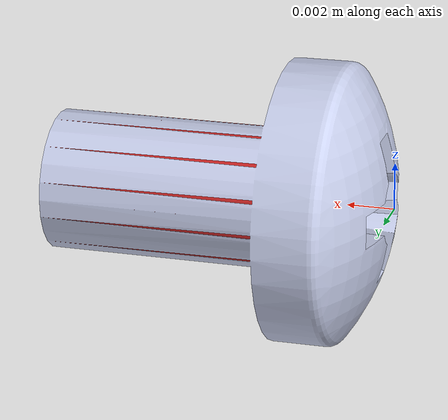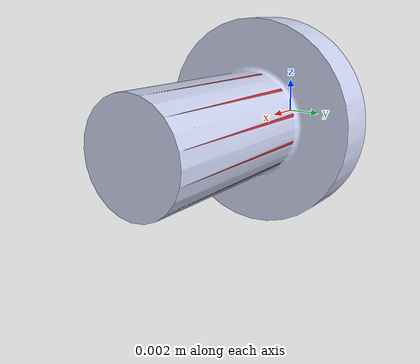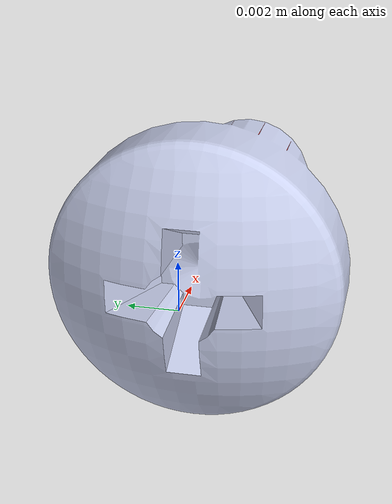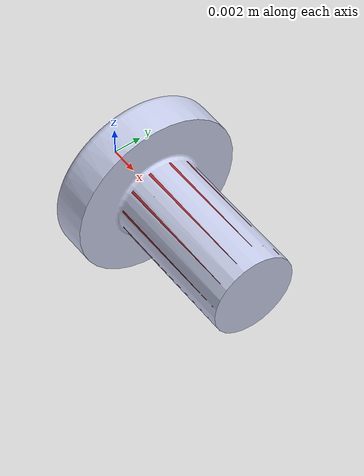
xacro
<?xml version="1.0" encoding="utf-8"?>
<robot name="C122925.SLDPRT" xmlns:xacro="http://www.ros.org/wiki/xacro">

	<link name="C122925.SLDPRT">
		<inertial>
			<origin xyz="0.00578 -5.0668E-19 2.6239E-19" rpy="0 0 0"></origin>
			<mass value="0.00065266"></mass>
			<inertia ixx="7.8857E-09" ixy="1.1443E-19" ixz="1.1443E-19" iyy="1.4007E-08" iyz="7.198E-14" izz="1.4006E-08"></inertia>
		</inertial>
		<visual>
			<origin xyz="0 0 0" rpy="0 0 0"></origin>
			<geometry>
				<mesh filename="package://object_description/urdfs_from_hj/C122925.SLDPRT/meshes/C122925.SLDPRT.STL"></mesh>
			</geometry>
			<material name="">
				<color rgba="0.79216 0.81961 0.93333 1"></color>
			</material>
		</visual>
		<collision>
			<origin xyz="0 0 0" rpy="0 0 0"></origin>
			<geometry>
				<mesh filename="package://object_description/urdfs_from_hj/C122925.SLDPRT/meshes/C122925.SLDPRT.STL"></mesh>
			</geometry>
		</collision>
	</link>
	<link name="C122925 pin screw 1">
		<visual>
			<origin xyz="0 0 0" rpy="0 0 0"></origin>
			<geometry>
				<cylinder length="0.009666671000000002" radius="0.003"></cylinder>
			</geometry>
		</visual>
	</link>
	<joint name="C122925 pin screw 1 joint" type="fixed">
		<origin xyz="0.0097222245 0.0 0.0" rpy="-0.0 1.57079632679 0.0"></origin>
		<parent link="C122925.SLDPRT"></parent>
		<child link="C122925 pin screw 1"></child>
	</joint>
	<gazebo reference="C122925 pin screw 1">
		<material>Gazebo/RedTransparent</material>
	</gazebo>
</robot>
